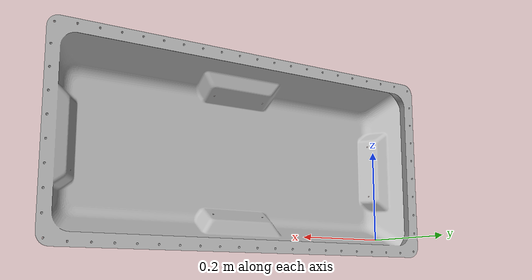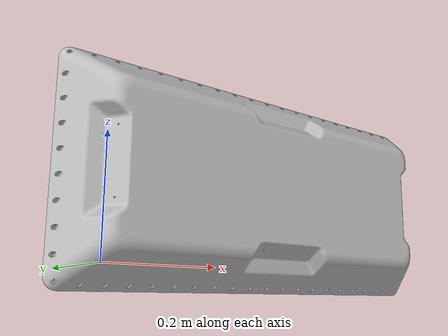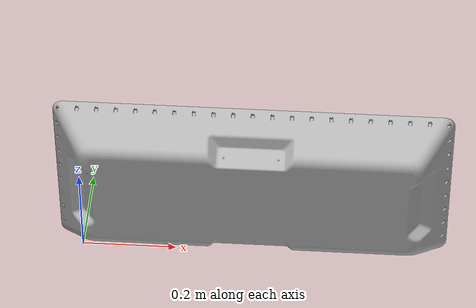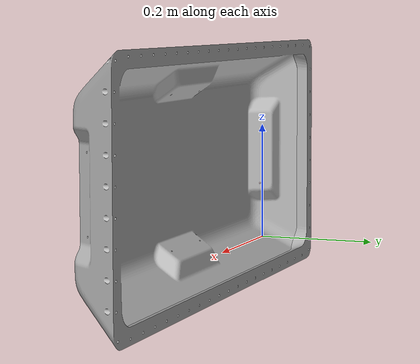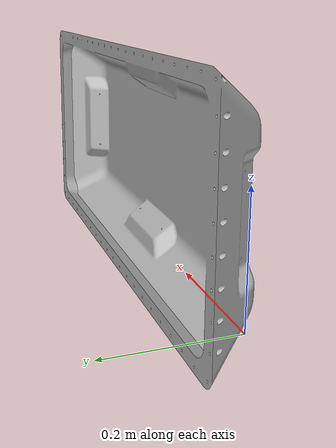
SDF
<?xml version='1.0'?>
<sdf version='1.6'>
  <model name='roboat'>
    <link name='base_link'>
      <pose frame=''>0 0 0 0 -0 0</pose>
      <inertial>
        <pose frame=''>0 0 0 0 -0 0</pose>
        <mass>30</mass>
        <inertia>
          <ixx>3.7</ixx>
          <ixy>0</ixy>
          <ixz>0</ixz>
          <iyy>2.5</iyy>
          <iyz>0</iyz>
          <izz>4.1</izz>
        </inertia>
      </inertial>
      <self_collide>0</self_collide>
      <kinematic>0</kinematic>
      <visual name='visual'>
        <pose frame=''>-0.1 -0.1 -0.08 0 -0 0</pose>
        <geometry>
          <mesh>
            <uri>model://roboat/meshes/roboat.STL</uri>
            <scale>0.001 0.001 0.001</scale>
          </mesh>
        </geometry>
        <cast_shadows>1</cast_shadows>
        <transparency>0</transparency>
        <material>
          <shader type='vertex'>
            <normal_map>__default__</normal_map>
          </shader>
        </material>
      </visual>
      <collision name='collision'>
        <laser_retro>0</laser_retro>
        <max_contacts>10</max_contacts>
        <pose frame=''>-0.1 -0.1 -0.08 0 -0 0</pose>
        <geometry>
          <box>
            <size>0.2 0.2 0.2</size>
          </box>
        </geometry>
        <surface>
          <friction>
            <ode>
              <mu>1</mu>
              <mu2>1</mu2>
              <fdir1>0 0 0</fdir1>
              <slip1>0</slip1>
              <slip2>0</slip2>
            </ode>
            <torsional>
              <coefficient>1</coefficient>
              <patch_radius>0</patch_radius>
              <surface_radius>0</surface_radius>
              <use_patch_radius>1</use_patch_radius>
              <ode>
                <slip>0</slip>
              </ode>
            </torsional>
          </friction>
          <bounce>
            <restitution_coefficient>0</restitution_coefficient>
            <threshold>1e+06</threshold>
          </bounce>
          <contact>
            <collide_without_contact>0</collide_without_contact>
            <collide_without_contact_bitmask>1</collide_without_contact_bitmask>
            <collide_bitmask>1</collide_bitmask>
            <ode>
              <soft_cfm>0</soft_cfm>
              <soft_erp>0.2</soft_erp>
              <kp>1e+13</kp>
              <kd>1</kd>
              <max_vel>0.01</max_vel>
              <min_depth>0</min_depth>
            </ode>
            <bullet>
              <split_impulse>1</split_impulse>
              <split_impulse_penetration_threshold>-0.01</split_impulse_penetration_threshold>
              <soft_cfm>0</soft_cfm>
              <soft_erp>0.2</soft_erp>
              <kp>1e+13</kp>
              <kd>1</kd>
            </bullet>
          </contact>
        </surface>
      </collision>
    </link>
    <static>0</static>
    <allow_auto_disable>0</allow_auto_disable>
  </model>
</sdf>
